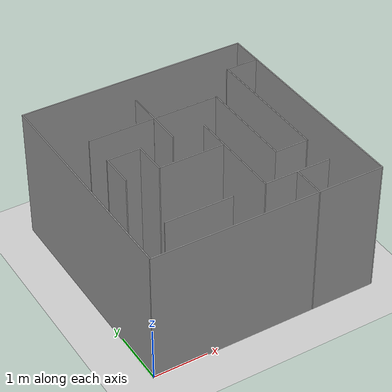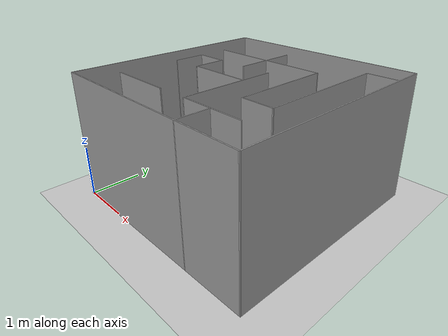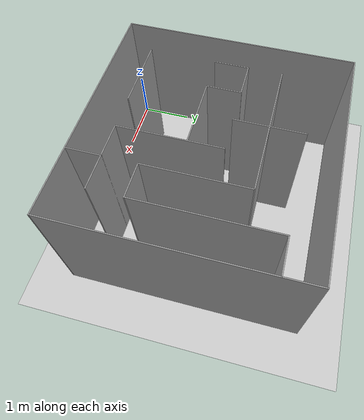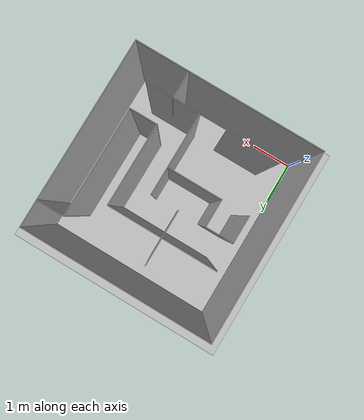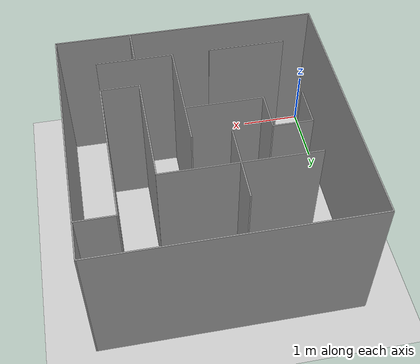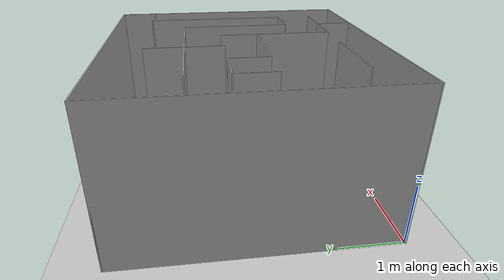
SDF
<sdf version="1.6">
 <world name="default">
  <light name="sun" type="directional">
   <pose>0 0 10 0 -0 0</pose>
   <diffuse>0.8 0.8 0.8 1</diffuse>
   <specular>0.2 0.2 0.2 1</specular>
   <attenuation>
    <range>1000</range>
    <constant>0.9</constant>
    <linear>0.01</linear>
    <quadratic>0.001</quadratic>
   </attenuation>
   <direction>-0.5 0.1 -0.9</direction>
  </light>
  <model name="ground_plane">
   <static>1</static>
   <link name="link">
    <collision name="collision">
     <geometry><plane><normal>0 0 1</normal><size>100 100</size></plane></geometry>
     <surface><friction><ode><mu>100</mu><mu2>50</mu2></ode></friction></surface>
    </collision>
    <visual name="visual">
     <cast_shadows>0</cast_shadows>
     <geometry><plane><normal>0 0 1</normal><size>100 100</size></plane></geometry>
     <material>
      <script><uri>file://media/materials/scripts/gazebo.material</uri><name>Gazebo/Grey</name></script>
     </material>
    </visual>
   </link>
  </model>
  <gravity>0 0 -9.8</gravity>
  <magnetic_field>6e-06 2.3e-05 -4.2e-05</magnetic_field>
  <atmosphere type="adiabatic"/>
  <physics name="default_physics" default="0" type="ode">
   <max_step_size>0.001</max_step_size>
   <real_time_factor>1</real_time_factor>
   <real_time_update_rate>1000</real_time_update_rate>
  </physics>
  <scene><ambient>0.4 0.4 0.4 1</ambient><background>0.7 0.7 0.7 1</background><shadows>1</shadows></scene>
  <audio><device>default</device></audio>
  <spherical_coordinates>
   <surface_model>EARTH_WGS84</surface_model>
   <latitude_deg>0</latitude_deg>
   <longitude_deg>0</longitude_deg>
   <elevation>0</elevation>
   <heading_deg>0</heading_deg>
  </spherical_coordinates>
  <model name="eced3901_final">
   <pose>2.12331 2.12573 0 0 -0 1.57006</pose>
   <link name="Wall_10">
    <collision name="Wall_10_Collision">
     <geometry><box><size>0.629 0.02 2.5</size></box></geometry>
     <pose>0 0 1.25 0 -0 0</pose>
    </collision>
    <visual name="Wall_10_Visual">
     <pose>0 0 1.25 0 -0 0</pose>
     <geometry><box><size>0.629 0.02 2.5</size></box></geometry>
     <material>
      <script><uri>file://media/materials/scripts/gazebo.material</uri><name>Gazebo/Grey</name></script>
      <ambient>1 1 1 1</ambient>
     </material>
     <meta><layer>0</layer></meta>
    </visual>
    <pose>1.523 -1.829 0 0 -0 1.5708</pose>
   </link>
   <link name="Wall_12">
    <collision name="Wall_12_Collision">
     <geometry><box><size>2.457 0.02 2.5</size></box></geometry>
     <pose>0 0 1.25 0 -0 0</pose>
    </collision>
    <visual name="Wall_12_Visual">
     <pose>0 0 1.25 0 -0 0</pose>
     <geometry><box><size>2.457 0.02 2.5</size></box></geometry>
     <material>
      <script><uri>file://media/materials/scripts/gazebo.material</uri><name>Gazebo/Grey</name></script>
      <ambient>1 1 1 1</ambient>
     </material>
     <meta><layer>0</layer></meta>
    </visual>
    <pose>0.3045 -1.5245 0 0 -0 3.14159</pose>
   </link>
   <link name="Wall_14">
    <collision name="Wall_14_Collision">
     <geometry><box><size>0.63 0.02 2.5</size></box></geometry>
     <pose>0 0 1.25 0 -0 0</pose>
    </collision>
    <visual name="Wall_14_Visual">
     <pose>0 0 1.25 0 -0 0</pose>
     <geometry><box><size>0.63 0.02 2.5</size></box></geometry>
     <material>
      <script><uri>file://media/materials/scripts/gazebo.material</uri><name>Gazebo/Grey</name></script>
      <ambient>1 1 1 1</ambient>
     </material>
     <meta><layer>0</layer></meta>
    </visual>
    <pose>-0.914 -1.2195 0 0 -0 1.5708</pose>
   </link>
   <link name="Wall_16">
    <collision name="Wall_16_Collision">
     <geometry><box><size>1.847 0.02 2.5</size></box></geometry>
     <pose>0 0 1.25 0 -0 0</pose>
    </collision>
    <visual name="Wall_16_Visual">
     <pose>0 0 1.25 0 -0 0</pose>
     <geometry><box><size>1.847 0.02 2.5</size></box></geometry>
     <material>
      <script><uri>file://media/materials/scripts/gazebo.material</uri><name>Gazebo/Grey</name></script>
      <ambient>1 1 1 1</ambient>
     </material>
     <meta><layer>0</layer></meta>
    </visual>
    <pose>-0.0005 -0.9145 0 0 -0 0</pose>
   </link>
   <link name="Wall_18">
    <collision name="Wall_18_Collision">
     <geometry><box><size>1.239 0.02 2.5</size></box></geometry>
     <pose>0 0 1.25 0 -0 0</pose>
    </collision>
    <visual name="Wall_18_Visual">
     <pose>0 0 1.25 0 -0 0</pose>
     <geometry><box><size>1.239 0.02 2.5</size></box></geometry>
     <material>
      <script><uri>file://media/materials/scripts/gazebo.material</uri><name>Gazebo/Grey</name></script>
      <ambient>1 1 1 1</ambient>
     </material>
     <meta><layer>0</layer></meta>
    </visual>
    <pose>0.913 -0.305 0 0 -0 1.5708</pose>
   </link>
   <link name="Wall_2">
    <collision name="Wall_2_Collision">
     <geometry><box><size>4.287 0.02 2.5</size></box></geometry>
     <pose>0 0 1.25 0 -0 0</pose>
    </collision>
    <visual name="Wall_2_Visual">
     <pose>0 0 1.25 0 -0 0</pose>
     <geometry><box><size>4.287 0.02 2.5</size></box></geometry>
     <material>
      <script><uri>file://media/materials/scripts/gazebo.material</uri><name>Gazebo/Grey</name></script>
      <ambient>1 1 1 1</ambient>
     </material>
     <meta><layer>0</layer></meta>
    </visual>
    <pose>-2.133 0 0 0 -0 1.5708</pose>
   </link>
   <link name="Wall_20">
    <collision name="Wall_20_Collision">
     <geometry><box><size>1.239 0.02 2.5</size></box></geometry>
     <pose>0 0 1.25 0 -0 0</pose>
    </collision>
    <visual name="Wall_20_Visual">
     <pose>0 0 1.25 0 -0 0</pose>
     <geometry><box><size>1.239 0.02 2.5</size></box></geometry>
     <material>
      <script><uri>file://media/materials/scripts/gazebo.material</uri><name>Gazebo/Grey</name></script>
      <ambient>1 1 1 1</ambient>
     </material>
     <meta><layer>0</layer></meta>
    </visual>
    <pose>0.9135 0.3035 0 0 -0 3.14159</pose>
   </link>
   <link name="Wall_23">
    <collision name="Wall_23_Collision">
     <geometry><box><size>1.239 0.02 2.5</size></box></geometry>
     <pose>0 0 1.25 0 -0 0</pose>
    </collision>
    <visual name="Wall_23_Visual">
     <pose>0 0 1.25 0 -0 0</pose>
     <geometry><box><size>1.239 0.02 2.5</size></box></geometry>
     <material>
      <script><uri>file://media/materials/scripts/gazebo.material</uri><name>Gazebo/Grey</name></script>
      <ambient>1 1 1 1</ambient>
     </material>
     <meta><layer>0</layer></meta>
    </visual>
    <pose>0.913 0.914 0 0 -0 1.5708</pose>
   </link>
   <link name="Wall_25">
    <collision name="Wall_25_Collision">
     <geometry><box><size>0.63 0.02 2.5</size></box></geometry>
     <pose>0 0 1.25 0 -0 0</pose>
    </collision>
    <visual name="Wall_25_Visual">
     <pose>0 0 1.25 0 -0 0</pose>
     <geometry><box><size>0.63 0.02 2.5</size></box></geometry>
     <material>
      <script><uri>file://media/materials/scripts/gazebo.material</uri><name>Gazebo/Grey</name></script>
      <ambient>1 1 1 1</ambient>
     </material>
     <meta><layer>0</layer></meta>
    </visual>
    <pose>-0.001 1.5235 0 0 -0 3.14159</pose>
   </link>
   <link name="Wall_27">
    <collision name="Wall_27_Collision">
     <geometry><box><size>0.63 0.02 2.5</size></box></geometry>
     <pose>0 0 1.25 0 -0 0</pose>
    </collision>
    <visual name="Wall_27_Visual">
     <pose>0 0 1.25 0 -0 0</pose>
     <geometry><box><size>0.63 0.02 2.5</size></box></geometry>
     <material>
      <script><uri>file://media/materials/scripts/gazebo.material</uri><name>Gazebo/Grey</name></script>
      <ambient>1 1 1 1</ambient>
     </material>
     <meta><layer>0</layer></meta>
    </visual>
    <pose>0.304 1.2185 0 0 -0 -1.5708</pose>
   </link>
   <link name="Wall_29">
    <collision name="Wall_29_Collision">
     <geometry><box><size>0.63 0.02 2.5</size></box></geometry>
     <pose>0 0 1.25 0 -0 0</pose>
    </collision>
    <visual name="Wall_29_Visual">
     <pose>0 0 1.25 0 -0 0</pose>
     <geometry><box><size>0.63 0.02 2.5</size></box></geometry>
     <material>
      <script><uri>file://media/materials/scripts/gazebo.material</uri><name>Gazebo/Grey</name></script>
      <ambient>1 1 1 1</ambient>
     </material>
     <meta><layer>0</layer></meta>
    </visual>
    <pose>-0.001 0.9135 0 0 -0 3.14159</pose>
   </link>
   <link name="Wall_31">
    <collision name="Wall_31_Collision">
     <geometry><box><size>1.239 0.02 2.5</size></box></geometry>
     <pose>0 0 1.25 0 -0 0</pose>
    </collision>
    <visual name="Wall_31_Visual">
     <pose>0 0 1.25 0 -0 0</pose>
     <geometry><box><size>1.239 0.02 2.5</size></box></geometry>
     <material>
      <script><uri>file://media/materials/scripts/gazebo.material</uri><name>Gazebo/Grey</name></script>
      <ambient>1 1 1 1</ambient>
     </material>
     <meta><layer>0</layer></meta>
    </visual>
    <pose>-0.305 0.304 0 0 -0 -1.5708</pose>
   </link>
   <link name="Wall_33">
    <collision name="Wall_33_Collision">
     <geometry><box><size>1.848 0.02 2.5</size></box></geometry>
     <pose>0 0 1.25 0 -0 0</pose>
    </collision>
    <visual name="Wall_33_Visual">
     <pose>0 0 1.25 0 -0 0</pose>
     <geometry><box><size>1.848 0.02 2.5</size></box></geometry>
     <material>
      <script><uri>file://media/materials/scripts/gazebo.material</uri><name>Gazebo/Grey</name></script>
      <ambient>1 1 1 1</ambient>
     </material>
     <meta><layer>0</layer></meta>
    </visual>
    <pose>-0.61 -0.3055 0 0 -0 3.14159</pose>
   </link>
   <link name="Wall_35">
    <collision name="Wall_35_Collision">
     <geometry><box><size>1.239 0.02 2.5</size></box></geometry>
     <pose>0 0 1.25 0 -0 0</pose>
    </collision>
    <visual name="Wall_35_Visual">
     <pose>0 0 1.25 0 -0 0</pose>
     <geometry><box><size>1.239 0.02 2.5</size></box></geometry>
     <material>
      <script><uri>file://media/materials/scripts/gazebo.material</uri><name>Gazebo/Grey</name></script>
      <ambient>1 1 1 1</ambient>
     </material>
     <meta><layer>0</layer></meta>
    </visual>
    <pose>-1.524 -0.915 0 0 -0 -1.5708</pose>
   </link>
   <link name="Wall_37">
    <collision name="Wall_37_Collision">
     <geometry><box><size>0.629 0.02 2.5</size></box></geometry>
     <pose>0 0 1.25 0 -0 0</pose>
    </collision>
    <visual name="Wall_37_Visual">
     <pose>0 0 1.25 0 -0 0</pose>
     <geometry><box><size>0.629 0.02 2.5</size></box></geometry>
     <material>
      <script><uri>file://media/materials/scripts/gazebo.material</uri><name>Gazebo/Grey</name></script>
      <ambient>1 1 1 1</ambient>
     </material>
     <meta><layer>0</layer></meta>
    </visual>
    <pose>-1.8285 -0.9155 0 0 -0 3.14159</pose>
   </link>
   <link name="Wall_4">
    <collision name="Wall_4_Collision">
     <geometry><box><size>4.286 0.02 2.5</size></box></geometry>
     <pose>0 0 1.25 0 -0 0</pose>
    </collision>
    <visual name="Wall_4_Visual">
     <pose>0 0 1.25 0 -0 0</pose>
     <geometry><box><size>4.286 0.02 2.5</size></box></geometry>
     <material>
      <script><uri>file://media/materials/scripts/gazebo.material</uri><name>Gazebo/Grey</name></script>
      <ambient>1 1 1 1</ambient>
     </material>
     <meta><layer>0</layer></meta>
    </visual>
    <pose>0 2.1325 0 0 -0 0</pose>
   </link>
   <link name="Wall_40">
    <collision name="Wall_40_Collision">
     <geometry><box><size>1.239 0.02 2.5</size></box></geometry>
     <pose>0 0 1.25 0 -0 0</pose>
    </collision>
    <visual name="Wall_40_Visual">
     <pose>0 0 1.25 0 -0 0</pose>
     <geometry><box><size>1.239 0.02 2.5</size></box></geometry>
     <material>
      <script><uri>file://media/materials/scripts/gazebo.material</uri><name>Gazebo/Grey</name></script>
      <ambient>1 1 1 1</ambient>
     </material>
     <meta><layer>0</layer></meta>
    </visual>
    <pose>-1.524 0.913 0 0 -0 -1.5708</pose>
   </link>
   <link name="Wall_6">
    <collision name="Wall_6_Collision">
     <geometry><box><size>4.286 0.02 2.5</size></box></geometry>
     <pose>0 0 1.25 0 -0 0</pose>
    </collision>
    <visual name="Wall_6_Visual">
     <pose>0 0 1.25 0 -0 0</pose>
     <geometry><box><size>4.286 0.02 2.5</size></box></geometry>
     <material>
      <script><uri>file://media/materials/scripts/gazebo.material</uri><name>Gazebo/Grey</name></script>
      <ambient>1 1 1 1</ambient>
     </material>
     <meta><layer>0</layer></meta>
    </visual>
    <pose>2.133 -0.0005 0 0 -0 -1.5708</pose>
   </link>
   <link name="Wall_8">
    <collision name="Wall_8_Collision">
     <geometry><box><size>4.286 0.02 2.5</size></box></geometry>
     <pose>0 0 1.25 0 -0 0</pose>
    </collision>
    <visual name="Wall_8_Visual">
     <pose>0 0 1.25 0 -0 0</pose>
     <geometry><box><size>4.286 0.02 2.5</size></box></geometry>
     <material>
      <script><uri>file://media/materials/scripts/gazebo.material</uri><name>Gazebo/Grey</name></script>
      <ambient>1 1 1 1</ambient>
     </material>
     <meta><layer>0</layer></meta>
    </visual>
    <pose>0 -2.1335 0 0 -0 3.14159</pose>
   </link>
   <static>1</static>
  </model>
 </world>
</sdf>
